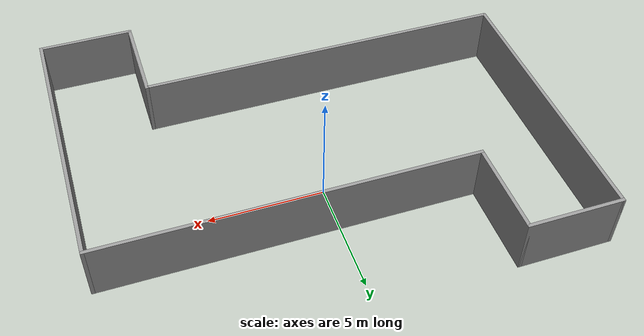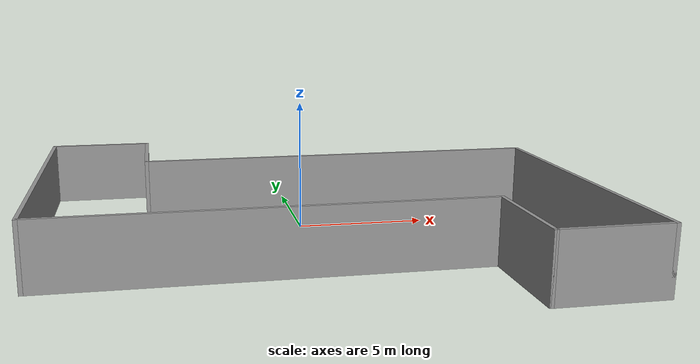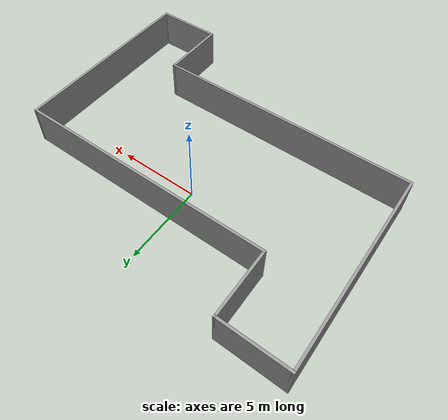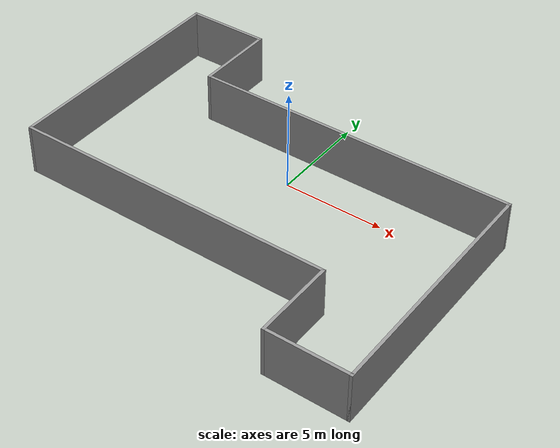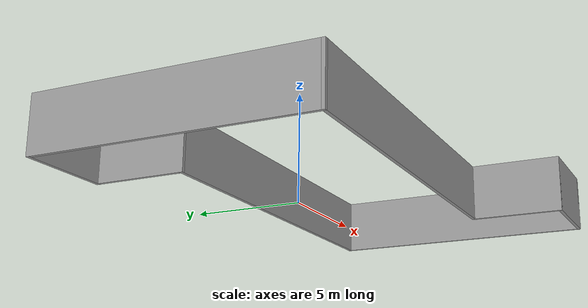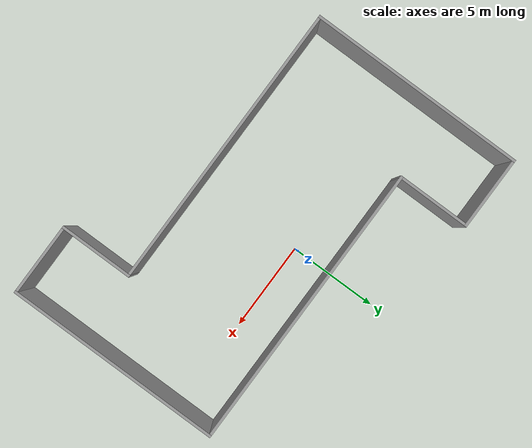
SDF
<?xml version='1.0'?>
<sdf version='1.7'>
  <model name='worldZ'>
    <pose>0 -2 0 0 -0 0</pose>
    <link name='Wall_13'>
      <collision name='Wall_13_Collision'>
        <geometry>
          <box>
            <size>12.15 0.15 2.5</size>
          </box>
        </geometry>
        <pose>0 0 1.25 0 -0 0</pose>
      </collision>
      <visual name='Wall_13_Visual'>
        <pose>0 0 1.25 0 -0 0</pose>
        <geometry>
          <box>
            <size>12.15 0.15 2.5</size>
          </box>
        </geometry>
        <material>
          <script>
            <uri>file://media/materials/scripts/gazebo.material</uri>
            <name>Gazebo/Grey</name>
          </script>
          <ambient>1 1 1 1</ambient>
        </material>
        <meta>
          <layer>0</layer>
        </meta>
      </visual>
      <pose>10 -2 0 0 -0 1.5708</pose>
    </link>
    <link name='Wall_15'>
      <collision name='Wall_15_Collision'>
        <geometry>
          <box>
            <size>16.15 0.15 2.5</size>
          </box>
        </geometry>
        <pose>0 0 1.25 0 -0 0</pose>
      </collision>
      <visual name='Wall_15_Visual'>
        <pose>0 0 1.25 0 -0 0</pose>
        <geometry>
          <box>
            <size>16.15 0.15 2.5</size>
          </box>
        </geometry>
        <material>
          <script>
            <uri>file://media/materials/scripts/gazebo.material</uri>
            <name>Gazebo/Grey</name>
          </script>
          <ambient>1 1 1 1</ambient>
        </material>
        <meta>
          <layer>0</layer>
        </meta>
      </visual>
      <pose>2 4 0 0 -0 3.14159</pose>
    </link>
    <link name='Wall_17'>
      <collision name='Wall_17_Collision'>
        <geometry>
          <box>
            <size>4.15 0.15 2.5</size>
          </box>
        </geometry>
        <pose>0 0 1.25 0 -0 0</pose>
      </collision>
      <visual name='Wall_17_Visual'>
        <pose>0 0 1.25 0 -0 0</pose>
        <geometry>
          <box>
            <size>4.15 0.15 2.5</size>
          </box>
        </geometry>
        <material>
          <script>
            <uri>file://media/materials/scripts/gazebo.material</uri>
            <name>Gazebo/Grey</name>
          </script>
          <ambient>1 1 1 1</ambient>
        </material>
        <meta>
          <layer>0</layer>
        </meta>
      </visual>
      <pose>6 -6 0 0 -0 -1.5708</pose>
    </link>
    <link name='Wall_19'>
      <collision name='Wall_19_Collision'>
        <geometry>
          <box>
            <size>12.15 0.15 2.5</size>
          </box>
        </geometry>
        <pose>0 0 1.25 0 -0 0</pose>
      </collision>
      <visual name='Wall_19_Visual'>
        <pose>0 0 1.25 0 -0 0</pose>
        <geometry>
          <box>
            <size>12.15 0.15 2.5</size>
          </box>
        </geometry>
        <material>
          <script>
            <uri>file://media/materials/scripts/gazebo.material</uri>
            <name>Gazebo/Grey</name>
          </script>
          <ambient>1 1 1 1</ambient>
        </material>
        <meta>
          <layer>0</layer>
        </meta>
      </visual>
      <pose>-10 2 0 0 -0 1.5708</pose>
    </link>
    <link name='Wall_21'>
      <collision name='Wall_21_Collision'>
        <geometry>
          <box>
            <size>4.15 0.15 2.5</size>
          </box>
        </geometry>
        <pose>0 0 1.25 0 -0 0</pose>
      </collision>
      <visual name='Wall_21_Visual'>
        <pose>0 0 1.25 0 -0 0</pose>
        <geometry>
          <box>
            <size>4.15 0.15 2.5</size>
          </box>
        </geometry>
        <material>
          <script>
            <uri>file://media/materials/scripts/gazebo.material</uri>
            <name>Gazebo/Grey</name>
          </script>
          <ambient>1 1 1 1</ambient>
        </material>
        <meta>
          <layer>0</layer>
        </meta>
      </visual>
      <pose>-8 8 0 0 -0 0</pose>
    </link>
    <link name='Wall_23'>
      <collision name='Wall_23_Collision'>
        <geometry>
          <box>
            <size>4.15 0.15 2.5</size>
          </box>
        </geometry>
        <pose>0 0 1.25 0 -0 0</pose>
      </collision>
      <visual name='Wall_23_Visual'>
        <pose>0 0 1.25 0 -0 0</pose>
        <geometry>
          <box>
            <size>4.15 0.15 2.5</size>
          </box>
        </geometry>
        <material>
          <script>
            <uri>file://media/materials/scripts/gazebo.material</uri>
            <name>Gazebo/Grey</name>
          </script>
          <ambient>1 1 1 1</ambient>
        </material>
        <meta>
          <layer>0</layer>
        </meta>
      </visual>
      <pose>-6 6 0 0 -0 -1.5708</pose>
    </link>
    <link name='Wall_25'>
      <collision name='Wall_25_Collision'>
        <geometry>
          <box>
            <size>4.15 0.15 2.5</size>
          </box>
        </geometry>
        <pose>0 0 1.25 0 -0 0</pose>
      </collision>
      <visual name='Wall_25_Visual'>
        <pose>0 0 1.25 0 -0 0</pose>
        <geometry>
          <box>
            <size>4.15 0.15 2.5</size>
          </box>
        </geometry>
        <material>
          <script>
            <uri>file://media/materials/scripts/gazebo.material</uri>
            <name>Gazebo/Grey</name>
          </script>
          <ambient>1 1 1 1</ambient>
        </material>
        <meta>
          <layer>0</layer>
        </meta>
      </visual>
      <pose>8 -8 0 0 -0 0</pose>
    </link>
    <link name='Wall_9'>
      <collision name='Wall_9_Collision'>
        <geometry>
          <box>
            <size>16.15 0.15 2.5</size>
          </box>
        </geometry>
        <pose>0 0 1.25 0 -0 0</pose>
      </collision>
      <visual name='Wall_9_Visual'>
        <pose>0 0 1.25 0 -0 0</pose>
        <geometry>
          <box>
            <size>16.15 0.15 2.5</size>
          </box>
        </geometry>
        <material>
          <script>
            <uri>file://media/materials/scripts/gazebo.material</uri>
            <name>Gazebo/Grey</name>
          </script>
          <ambient>1 1 1 1</ambient>
        </material>
        <meta>
          <layer>0</layer>
        </meta>
      </visual>
      <pose>-2 -4 0 0 -0 3.14159</pose>
    </link>
    <static>1</static>
  </model>
</sdf>
